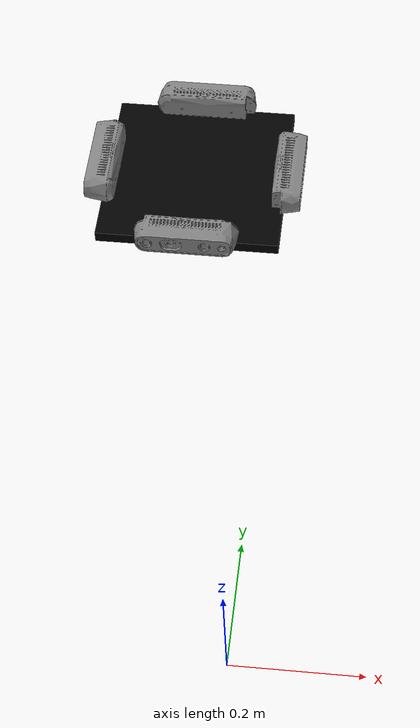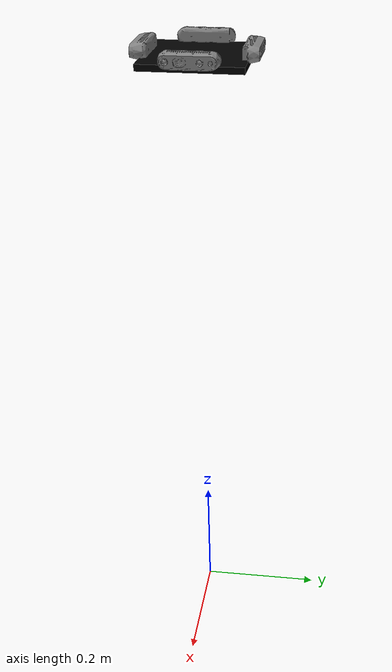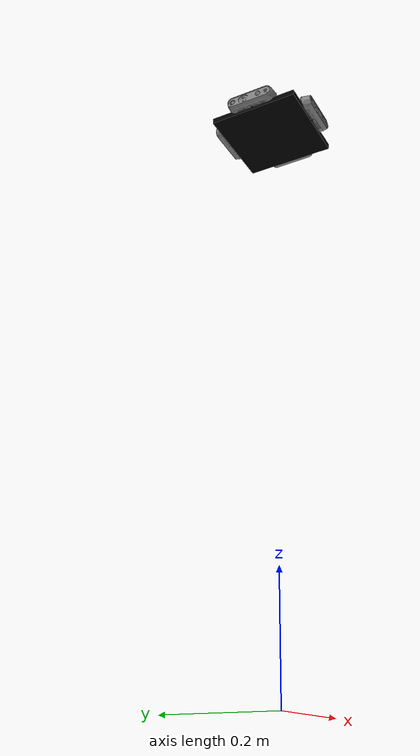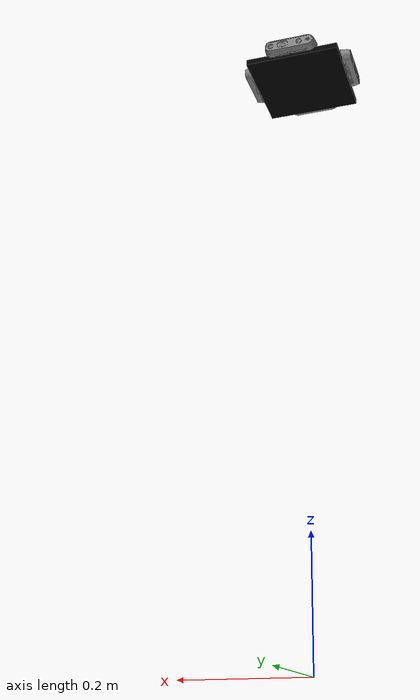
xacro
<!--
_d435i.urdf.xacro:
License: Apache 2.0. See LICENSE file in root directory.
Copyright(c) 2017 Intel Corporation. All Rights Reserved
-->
<?xml version="1.0"?>
<robot xmlns:xacro="http://www.ros.org/wiki/xacro" name="test_rs">

  <xacro:property name="base_width" value="0.16"/>
  <xacro:property name="base_len" value="0.16"/>

  <!--Color Properties-->
  <material name="blue">
    <color rgba="0 0 0.8 1"/>
  </material>
  <material name="black">
    <color rgba="0 0 0 1"/>
  </material>
  <material name="white">
    <color rgba="1 1 1 1"/>
  </material>
  <material name="red">
    <color rgba="0.8 0.0 0.0 1.0"/>
  </material>

  <!--Interial macros-->
  <xacro:macro name="cylinder_inertia" params="m r h">
    <inertial>
      <mass value="${m}"/>
      <inertia ixx="${m*(3*r*r+h*h)/12}" ixy = "0" ixz = "0" iyy="${m*(3*r*r+h*h)/12}" iyz = "0" izz="${m*r*r/2}"/>
    </inertial>
  </xacro:macro>

  <xacro:macro name="box_inertia" params="m w h d">
    <inertial>
      <mass value="${m}"/>
      <inertia ixx="${m / 12.0 * (d*d + h*h)}" ixy="0.0" ixz="0.0" iyy="${m / 12.0 * (w*w + h*h)}" iyz="0.0" izz="${m / 12.0 * (w*w + d*d)}"/>
    </inertial>
  </xacro:macro>

  <xacro:macro name="sphere_inertia" params="m r">
    <inertial>
      <mass value="${m}"/>
      <inertia ixx="${2.0*m*(r*r)/5.0}" ixy="0.0" ixz="0.0" iyy="${2.0*m*(r*r)/5.0}" iyz="0.0" izz="${2.0*m*(r*r)/5.0}"/>
    </inertial>
  </xacro:macro>

  <!--Base Footprint-->
  <link name="base_footprint">
    <xacro:box_inertia m="0.001" w="0.001" h="0.001" d="0.001"/>
    <visual>
        <origin xyz="0 0 0" rpy="0 0 0" />
        <geometry>
            <box size="0.001 0.001 0.001" />
        </geometry>
    </visual>
  </link>

  <!--Base link-->
  <link name="base_link">
    <xacro:box_inertia m="1" w="${base_len}" h="${base_width}" d="0.01"/>
    <visual>
      <geometry>
        <box size="${base_len} ${base_width} 0.01"/>
      </geometry>
      <material name="black"/>
    </visual>
    <collision>
      <geometry>
        <box size="${base_len} ${base_width} 0.01"/>
      </geometry>
    </collision>
  </link>

  <!--base_link to base_footprint Joint-->
  <joint name="base_link_joint" type="fixed">
    <origin xyz="0 0 1" rpy="0 0 0" />
    <parent link="base_footprint"/>
    <child link="base_link" />
  </joint>

  <xacro:arg name="use_nominal_extrinsics" default="false" />
  <xacro:include filename="$(find realsense2_description)/urdf/_d435i.urdf.xacro"/>

  <xacro:sensor_d435i parent="base_link" name="camera1" use_nominal_extrinsics="$(arg use_nominal_extrinsics)">
    <origin xyz="0 -0.08 0" rpy="0.0 0.0 -1.57079632679 "/>
  </xacro:sensor_d435i>

  <xacro:sensor_d435i parent="base_link" name="camera2" use_nominal_extrinsics="$(arg use_nominal_extrinsics)">
    <origin xyz="0.08 0.0 0" rpy="0.0 0.0 0"/>
  </xacro:sensor_d435i>

  <xacro:sensor_d435i parent="base_link" name="camera3" use_nominal_extrinsics="$(arg use_nominal_extrinsics)">
    <origin xyz="0 0.08 0" rpy="0.0 0.0 1.57079632679"/>
  </xacro:sensor_d435i>

  <xacro:sensor_d435i parent="base_link" name="camera4" use_nominal_extrinsics="$(arg use_nominal_extrinsics)">
    <origin xyz="-0.08 0 0" rpy="0.0 0.0 3.14159265359"/>
  </xacro:sensor_d435i>

</robot>

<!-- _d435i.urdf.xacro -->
<robot name="sensor_d435i" xmlns:xacro="http://ros.org/wiki/xacro">
  <!--File includes-->
  <xacro:include filename="$(find mai_sim)/urdf/_d435i.gazebo.xacro"/>

  <xacro:macro name="sensor_d435i" params="parent
                                          name:=camera
                                          topics_ns:=camera
                                          visualize:=true
                                          align_depth:=false
                                          enable_pointCloud:=false
                                          unite_imu_method:=false
                                          accel_fps:=250
                                          gyro_fps:=400
                                          clip_distance:=-1.0
                                          depth_width:=1280
                                          depth_height:=720
                                          depth_fps:=30
                                          infra_width:=640
                                          infra_height:=480
                                          infra_fps:=30
                                          color_width:=1920
                                          color_height:=1080
                                          color_fps:=30
                                          *origin">
    <xacro:property name="M_PI" value="3.1415926535897931"/>

    <!-- The following values are approximate, and the camera node
     publishing TF values with actual calibrated camera extrinsic values -->
    <xacro:property name="d435i_cam_depth_to_left_ir_offset" value="0.0"/>
    <xacro:property name="d435i_cam_depth_to_right_ir_offset" value="-0.050"/>
    <xacro:property name="d435i_cam_depth_to_color_offset" value="0.015"/>

    <!-- The following values model the aluminum peripherial case for the
  	D435 camera, with the camera joint represented by the actual
  	peripherial camera tripod mount -->
    <xacro:property name="d435i_cam_width" value="0.090"/>
    <xacro:property name="d435i_cam_height" value="0.025"/>
    <xacro:property name="d435i_cam_depth" value="0.02505"/>
    <xacro:property name="d435i_cam_mount_from_center_offset" value="0.0149"/>

    <!-- The following offset is relative the the physical D435 camera peripherial
  	camera tripod mount -->
    <xacro:property name="d435i_cam_depth_px" value="${d435i_cam_mount_from_center_offset}"/>
    <xacro:property name="d435i_cam_depth_py" value="0.0175"/>
    <xacro:property name="d435i_cam_depth_pz" value="${d435i_cam_height/2}"/>

    <material name="${name}_aluminum">
	  <color rgba="0.5 0.5 0.5 1"/>
    </material>

    <!-- camera body, with origin at bottom screw mount -->
    <joint name="${name}_joint" type="fixed">
      <xacro:insert_block name="origin"/>
      <parent link="${parent}"/>
      <child link="${name}_bottom_screw_frame"/>
    </joint>
    <link name="${name}_bottom_screw_frame"/>

    <joint name="${name}_link_joint" type="fixed">
      <origin xyz="0 ${d435i_cam_depth_py} ${d435i_cam_depth_pz}" rpy="0 0 0"/>
      <parent link="${name}_bottom_screw_frame"/>
      <child link="${name}_link"/>
    </joint>

    <link name="${name}_link">
      <visual>
      <origin xyz="${d435i_cam_mount_from_center_offset} ${-d435i_cam_depth_py} 0" rpy="${M_PI/2} 0 ${M_PI/2}"/>
        <geometry>
          <mesh filename="package://realsense2_description/meshes/d435.dae"/>
        </geometry>
        <material name="${name}_aluminum"/>
      </visual>
      <collision>
        <origin xyz="0 ${-d435i_cam_depth_py} 0" rpy="0 0 0"/>
        <geometry>
        <box size="${d435i_cam_depth} ${d435i_cam_width} ${d435i_cam_height}"/>
        </geometry>
      </collision>
      <inertial>
        <!-- The following are not reliable values, and should not be used for modeling -->
        <mass value="0.564"/>
        <origin xyz="0 0 0"/>
        <inertia ixx="0.003881243" ixy="0.0" ixz="0.0" iyy="0.000498940" iyz="0.0" izz="0.003879257"/>
      </inertial>
    </link>

    <!-- camera depth joints and links -->
    <joint name="${name}_depth_joint" type="fixed">
      <origin xyz="0 0 0" rpy="0 0 0"/>
      <parent link="${name}_link"/>
      <child link="${name}_depth_frame"/>
    </joint>
    <link name="${name}_depth_frame"/>

    <joint name="${name}_depth_optical_joint" type="fixed">
      <origin xyz="0 0 0" rpy="${-M_PI/2} 0 ${-M_PI/2}"/>
      <parent link="${name}_depth_frame"/>
      <child link="${name}_depth_optical_frame"/>
    </joint>
    <link name="${name}_depth_optical_frame"/>

    <!-- camera left IR joints and links -->
    <joint name="${name}_left_ir_joint" type="fixed">
      <origin xyz="0 ${d435i_cam_depth_to_left_ir_offset} 0" rpy="0 0 0"/>
      <parent link="${name}_depth_frame"/>
      <child link="${name}_left_ir_frame"/>
    </joint>
    <link name="${name}_left_ir_frame"/>

    <joint name="${name}_left_ir_optical_joint" type="fixed">
      <origin xyz="0 0 0" rpy="${-M_PI/2} 0 ${-M_PI/2}"/>
      <parent link="${name}_left_ir_frame"/>
      <child link="${name}_left_ir_optical_frame"/>
    </joint>
    <link name="${name}_left_ir_optical_frame"/>

    <!-- camera right IR joints and links -->
    <joint name="${name}_right_ir_joint" type="fixed">
      <origin xyz="0 ${d435i_cam_depth_to_right_ir_offset} 0" rpy="0 0 0"/>
      <parent link="${name}_depth_frame"/>
      <child link="${name}_right_ir_frame"/>
    </joint>
    <link name="${name}_right_ir_frame"/>

    <joint name="${name}_right_ir_optical_joint" type="fixed">
      <origin xyz="0 0 0" rpy="${-M_PI/2} 0 ${-M_PI/2}"/>
      <parent link="${name}_right_ir_frame"/>
      <child link="${name}_right_ir_optical_frame"/>
    </joint>
    <link name="${name}_right_ir_optical_frame"/>

    <!-- camera color joints and links -->
    <joint name="${name}_color_joint" type="fixed">
      <origin xyz="0 ${d435i_cam_depth_to_color_offset} 0" rpy="0 0 0"/>
      <parent link="${name}_depth_frame"/>
      <child link="${name}_color_frame"/>
    </joint>
    <link name="${name}_color_frame"/>

    <joint name="${name}_color_optical_joint" type="fixed">
      <origin xyz="0 0 0" rpy="${-M_PI/2} 0 ${-M_PI/2}"/>
      <parent link="${name}_color_frame"/>
      <child link="${name}_color_optical_frame"/>
    </joint>
    <link name="${name}_color_optical_frame"/>

    <!-- camera accel joints and links -->
    <joint name="${name}_accel_joint" type="fixed">
      <origin xyz="-0.00174 0.00552 0.0176" rpy="0 0 0"/>
      <parent link="${name}_link"/>
      <child link="${name}_accel_frame"/>
    </joint>
    <link name="${name}_accel_frame"/>

    <joint name="${name}_accel_optical_joint" type="fixed">
      <origin xyz="0 0 0" rpy="${-M_PI/2} 0 ${-M_PI/2}"/>
      <parent link="${name}_accel_frame"/>
      <child link="${name}_accel_optical_frame"/>
    </joint>
    <link name="${name}_accel_optical_frame"/>

    <!-- camera gyro joints and links -->
    <joint name="${name}_gyro_joint" type="fixed">
      <origin xyz="-0.00174 0.00552 0.0176" rpy="0 0 0"/>
      <parent link="${name}_link"/>
      <child link="${name}_gyro_frame"/>
    </joint>
    <link name="${name}_gyro_frame"/>

    <joint name="${name}_gyro_optical_joint" type="fixed">
      <origin xyz="0 0 0" rpy="${-M_PI/2} 0 ${-M_PI/2}"/>
      <parent link="${name}_gyro_frame"/>
      <child link="${name}_gyro_optical_frame"/>
    </joint>
    <link name="${name}_gyro_optical_frame"/>

    <!-- Realsense Gazebo Plugin -->
    <xacro:gazebo_d435i camera_name="${name}"
                        topics_ns="${topics_ns}"
                        reference_link="${name}_link"

                        depth_optical_frame="${name}_depth_optical_frame"
                        depth_width="${depth_width}"
                        depth_height="${depth_height}"
                        depth_fps="${depth_fps}"

                        color_optical_frame="${name}_color_optical_frame"
                        color_width="${color_width}"
                        color_height="${color_height}"
                        color_fps="${color_fps}"

                        infrared1_optical_frame="${name}_left_ir_optical_frame"
                        infrared2_optical_frame="${name}_right_ir_optical_frame"
                        infra_width="${infra_width}"
                        infra_height="${infra_height}"
                        infra_fps="${infra_fps}"

                        accel_optical_frame="${name}_accel_optical_frame"
                        gyro_optical_frame="${name}_gyro_optical_frame"
                        accel_fps="${accel_fps}"
                        gyro_fps="${gyro_fps}"

                        enable_pointCloud="${enable_pointCloud}"
                        unite_imu_method="${unite_imu_method}"
                        clip_distance="${clip_distance}"
                        align_depth="${align_depth}"
                        visualize="${visualize}"
    />

  </xacro:macro>
</robot>
